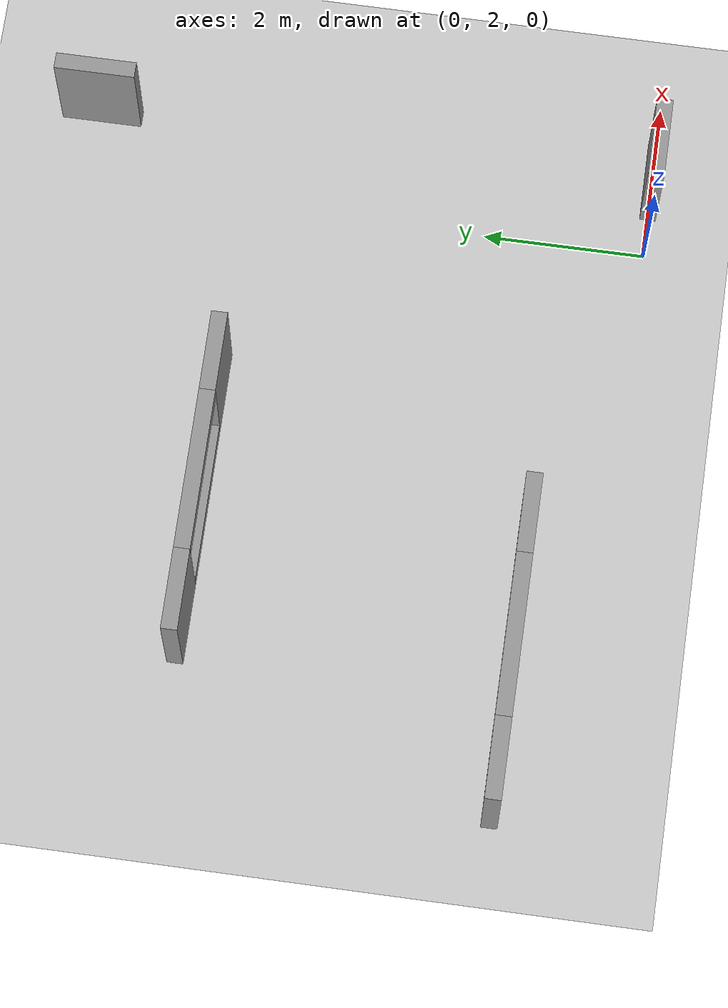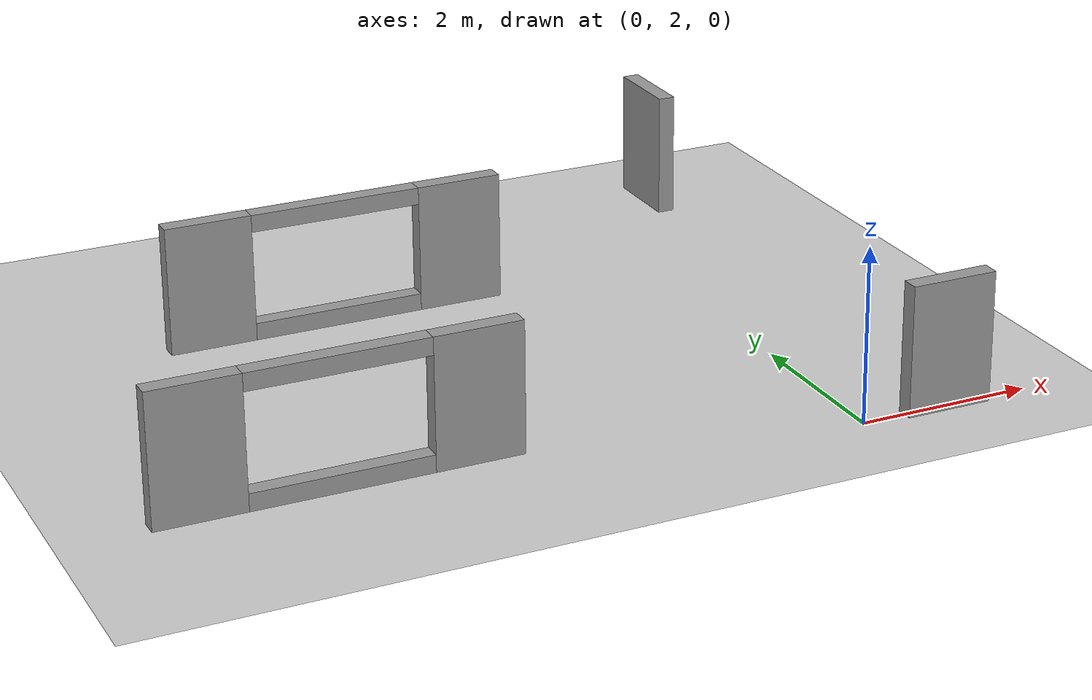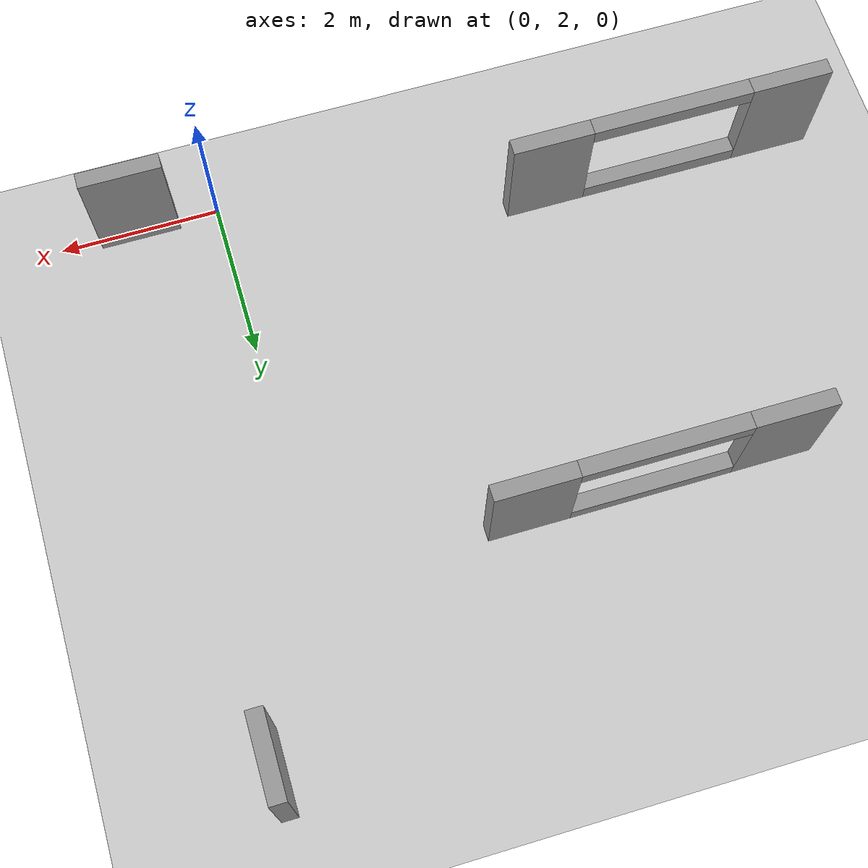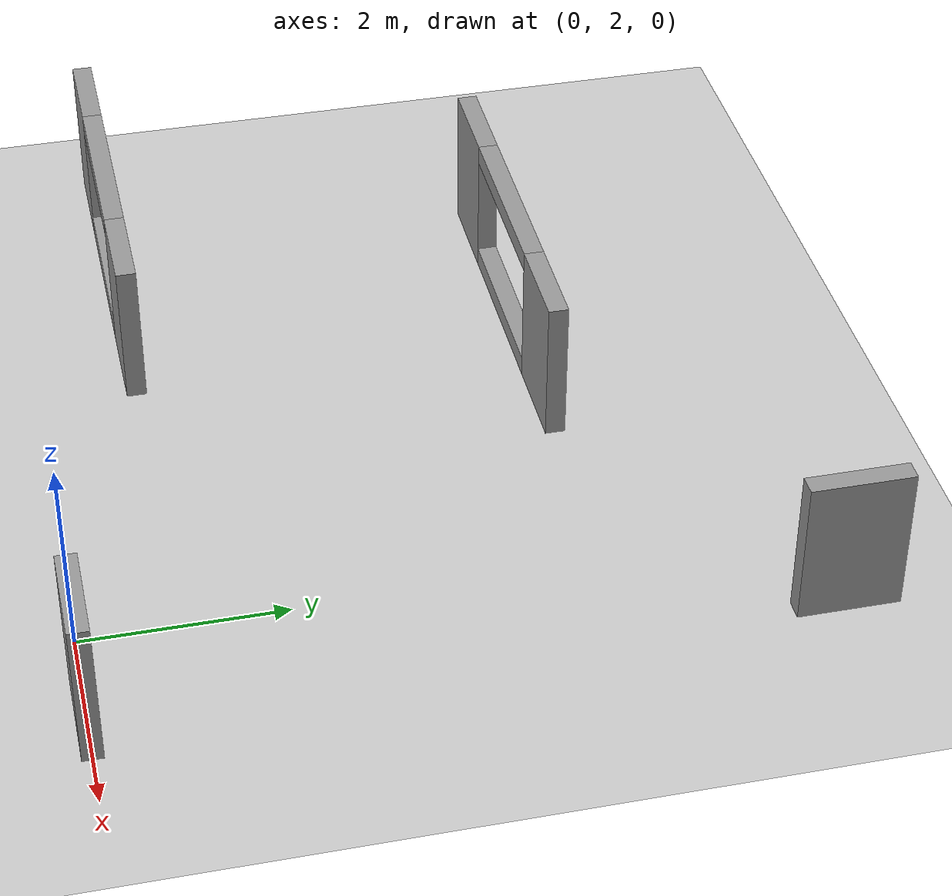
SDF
<sdf version="1.6">
 <world name="default">
  <model name="ground_plane">
   <static>1</static>
   <link name="link">
    <collision name="collision">
     <geometry><plane><normal>0 0 1</normal><size>100 100</size></plane></geometry>
     <surface><friction><ode><mu>100</mu><mu2>50</mu2></ode></friction></surface>
    </collision>
    <visual name="visual">
     <cast_shadows>0</cast_shadows>
     <geometry><plane><normal>0 0 1</normal><size>100 100</size></plane></geometry>
     <material>
      <script><uri>file://media/materials/scripts/gazebo.material</uri><name>Gazebo/Grey</name></script>
     </material>
    </visual>
   </link>
  </model>
  <model name="wall1_1">
   <link name="link">
    <inertial>
     <mass>1</mass>
     <inertia><ixx>1</ixx><ixy>0</ixy><ixz>0</ixz><iyy>1</iyy><iyz>0</iyz><izz>1</izz></inertia>
    </inertial>
    <visual name="visual">
     <cast_shadows>0</cast_shadows>
     <geometry><box><size>1 0.2 1.5</size></box></geometry>
     <material>
      <script>
       <uri>model://grey_wall/materials/scripts</uri>
       <uri>model://grey_wall/materials/textures</uri>
       <name>vrc/grey_wall</name>
      </script>
      <ambient>1 1 1 1</ambient>
      <diffuse>1 1 1 1</diffuse>
      <specular>0 0 0 1</specular>
      <emissive>0 0 0 1</emissive>
      <shader type="vertex"><normal_map>__default__</normal_map></shader>
     </material>
    </visual>
    <collision name="collision">
     <geometry><box><size>1.0 0.2 1.5</size></box></geometry>
     <surface>
      <friction>
       <ode><mu>1</mu><mu2>1</mu2><fdir1>0 0 0</fdir1><slip1>0</slip1><slip2>0</slip2></ode>
       <torsional>
        <coefficient>1</coefficient>
        <patch_radius>0</patch_radius>
        <surface_radius>0</surface_radius>
        <use_patch_radius>1</use_patch_radius>
        <ode><slip>0</slip></ode>
       </torsional>
      </friction>
      <bounce><restitution_coefficient>0</restitution_coefficient><threshold>1e+06</threshold></bounce>
      <contact>
       <collide_without_contact>0</collide_without_contact>
       <collide_without_contact_bitmask>1</collide_without_contact_bitmask>
       <collide_bitmask>1</collide_bitmask>
       <ode>
        <soft_cfm>0</soft_cfm>
        <soft_erp>0.2</soft_erp>
        <kp>1e+13</kp>
        <kd>1</kd>
        <max_vel>0.01</max_vel>
        <min_depth>0</min_depth>
       </ode>
       <bullet>
        <split_impulse>1</split_impulse>
        <split_impulse_penetration_threshold>-0.01</split_impulse_penetration_threshold>
        <soft_cfm>0</soft_cfm>
        <soft_erp>0.2</soft_erp>
        <kp>1e+13</kp>
        <kd>1</kd>
       </bullet>
      </contact>
     </surface>
    </collision>
   </link>
   <static>1</static>
   <pose>1.0 2.0 0.75 0 -0 0</pose>
  </model>
  <model name="wall3_1">
   <link name="link">
    <inertial>
     <mass>1</mass>
     <inertia><ixx>1</ixx><ixy>0</ixy><ixz>0</ixz><iyy>1</iyy><iyz>0</iyz><izz>1</izz></inertia>
    </inertial>
    <visual name="visual">
     <cast_shadows>0</cast_shadows>
     <geometry><box><size>1 0.2 1.5</size></box></geometry>
     <material>
      <script>
       <uri>model://grey_wall/materials/scripts</uri>
       <uri>model://grey_wall/materials/textures</uri>
       <name>vrc/grey_wall</name>
      </script>
      <ambient>1 1 1 1</ambient>
      <diffuse>1 1 1 1</diffuse>
      <specular>0 0 0 1</specular>
      <emissive>0 0 0 1</emissive>
      <shader type="vertex"><normal_map>__default__</normal_map></shader>
     </material>
    </visual>
    <collision name="collision">
     <geometry><box><size>1.0 0.2 1.5</size></box></geometry>
     <surface>
      <friction>
       <ode><mu>1</mu><mu2>1</mu2><fdir1>0 0 0</fdir1><slip1>0</slip1><slip2>0</slip2></ode>
       <torsional>
        <coefficient>1</coefficient>
        <patch_radius>0</patch_radius>
        <surface_radius>0</surface_radius>
        <use_patch_radius>1</use_patch_radius>
        <ode><slip>0</slip></ode>
       </torsional>
      </friction>
      <bounce><restitution_coefficient>0</restitution_coefficient><threshold>1e+06</threshold></bounce>
      <contact>
       <collide_without_contact>0</collide_without_contact>
       <collide_without_contact_bitmask>1</collide_without_contact_bitmask>
       <collide_bitmask>1</collide_bitmask>
       <ode>
        <soft_cfm>0</soft_cfm>
        <soft_erp>0.2</soft_erp>
        <kp>1e+13</kp>
        <kd>1</kd>
        <max_vel>0.01</max_vel>
        <min_depth>0</min_depth>
       </ode>
       <bullet>
        <split_impulse>1</split_impulse>
        <split_impulse_penetration_threshold>-0.01</split_impulse_penetration_threshold>
        <soft_cfm>0</soft_cfm>
        <soft_erp>0.2</soft_erp>
        <kp>1e+13</kp>
        <kd>1</kd>
       </bullet>
      </contact>
     </surface>
    </collision>
   </link>
   <static>1</static>
   <pose>-7.0 3.0 0.75 0 -0 0</pose>
  </model>
  <model name="wall3_3">
   <link name="link">
    <inertial>
     <mass>1</mass>
     <inertia><ixx>1</ixx><ixy>0</ixy><ixz>0</ixz><iyy>1</iyy><iyz>0</iyz><izz>1</izz></inertia>
    </inertial>
    <visual name="visual">
     <cast_shadows>0</cast_shadows>
     <geometry><box><size>2.0 0.2 0.2</size></box></geometry>
     <material>
      <script>
       <uri>model://grey_wall/materials/scripts</uri>
       <uri>model://grey_wall/materials/textures</uri>
       <name>vrc/grey_wall</name>
      </script>
      <ambient>1 1 1 1</ambient>
      <diffuse>1 1 1 1</diffuse>
      <specular>0 0 0 1</specular>
      <emissive>0 0 0 1</emissive>
      <shader type="vertex"><normal_map>__default__</normal_map></shader>
     </material>
    </visual>
    <collision name="collision">
     <geometry><box><size>2.0 0.2 0.2</size></box></geometry>
     <surface>
      <friction>
       <ode><mu>1</mu><mu2>1</mu2><fdir1>0 0 0</fdir1><slip1>0</slip1><slip2>0</slip2></ode>
       <torsional>
        <coefficient>1</coefficient>
        <patch_radius>0</patch_radius>
        <surface_radius>0</surface_radius>
        <use_patch_radius>1</use_patch_radius>
        <ode><slip>0</slip></ode>
       </torsional>
      </friction>
      <bounce><restitution_coefficient>0</restitution_coefficient><threshold>1e+06</threshold></bounce>
      <contact>
       <collide_without_contact>0</collide_without_contact>
       <collide_without_contact_bitmask>1</collide_without_contact_bitmask>
       <collide_bitmask>1</collide_bitmask>
       <ode>
        <soft_cfm>0</soft_cfm>
        <soft_erp>0.2</soft_erp>
        <kp>1e+13</kp>
        <kd>1</kd>
        <max_vel>0.01</max_vel>
        <min_depth>0</min_depth>
       </ode>
       <bullet>
        <split_impulse>1</split_impulse>
        <split_impulse_penetration_threshold>-0.01</split_impulse_penetration_threshold>
        <soft_cfm>0</soft_cfm>
        <soft_erp>0.2</soft_erp>
        <kp>1e+13</kp>
        <kd>1</kd>
       </bullet>
      </contact>
     </surface>
    </collision>
   </link>
   <static>1</static>
   <pose>-5.5 3.0 0.1 0 -0 0</pose>
  </model>
  <model name="wall3_4">
   <link name="link">
    <inertial>
     <mass>1</mass>
     <inertia><ixx>1</ixx><ixy>0</ixy><ixz>0</ixz><iyy>1</iyy><iyz>0</iyz><izz>1</izz></inertia>
    </inertial>
    <visual name="visual">
     <cast_shadows>0</cast_shadows>
     <geometry><box><size>2.0 0.2 0.2</size></box></geometry>
     <material>
      <script>
       <uri>model://grey_wall/materials/scripts</uri>
       <uri>model://grey_wall/materials/textures</uri>
       <name>vrc/grey_wall</name>
      </script>
      <ambient>1 1 1 1</ambient>
      <diffuse>1 1 1 1</diffuse>
      <specular>0 0 0 1</specular>
      <emissive>0 0 0 1</emissive>
      <shader type="vertex"><normal_map>__default__</normal_map></shader>
     </material>
    </visual>
    <collision name="collision">
     <geometry><box><size>2.0 0.2 0.2</size></box></geometry>
     <surface>
      <friction>
       <ode><mu>1</mu><mu2>1</mu2><fdir1>0 0 0</fdir1><slip1>0</slip1><slip2>0</slip2></ode>
       <torsional>
        <coefficient>1</coefficient>
        <patch_radius>0</patch_radius>
        <surface_radius>0</surface_radius>
        <use_patch_radius>1</use_patch_radius>
        <ode><slip>0</slip></ode>
       </torsional>
      </friction>
      <bounce><restitution_coefficient>0</restitution_coefficient><threshold>1e+06</threshold></bounce>
      <contact>
       <collide_without_contact>0</collide_without_contact>
       <collide_without_contact_bitmask>1</collide_without_contact_bitmask>
       <collide_bitmask>1</collide_bitmask>
       <ode>
        <soft_cfm>0</soft_cfm>
        <soft_erp>0.2</soft_erp>
        <kp>1e+13</kp>
        <kd>1</kd>
        <max_vel>0.01</max_vel>
        <min_depth>0</min_depth>
       </ode>
       <bullet>
        <split_impulse>1</split_impulse>
        <split_impulse_penetration_threshold>-0.01</split_impulse_penetration_threshold>
        <soft_cfm>0</soft_cfm>
        <soft_erp>0.2</soft_erp>
        <kp>1e+13</kp>
        <kd>1</kd>
       </bullet>
      </contact>
     </surface>
    </collision>
   </link>
   <static>1</static>
   <pose>-5.5 3.0 1.4 0 -0 0</pose>
  </model>
  <model name="wall3_2">
   <link name="link">
    <inertial>
     <mass>1</mass>
     <inertia><ixx>1</ixx><ixy>0</ixy><ixz>0</ixz><iyy>1</iyy><iyz>0</iyz><izz>1</izz></inertia>
    </inertial>
    <visual name="visual">
     <cast_shadows>0</cast_shadows>
     <geometry><box><size>1 0.2 1.5</size></box></geometry>
     <material>
      <script>
       <uri>model://grey_wall/materials/scripts</uri>
       <uri>model://grey_wall/materials/textures</uri>
       <name>vrc/grey_wall</name>
      </script>
      <ambient>1 1 1 1</ambient>
      <diffuse>1 1 1 1</diffuse>
      <specular>0 0 0 1</specular>
      <emissive>0 0 0 1</emissive>
      <shader type="vertex"><normal_map>__default__</normal_map></shader>
     </material>
    </visual>
    <collision name="collision">
     <geometry><box><size>1.0 0.2 1.5</size></box></geometry>
     <surface>
      <friction>
       <ode><mu>1</mu><mu2>1</mu2><fdir1>0 0 0</fdir1><slip1>0</slip1><slip2>0</slip2></ode>
       <torsional>
        <coefficient>1</coefficient>
        <patch_radius>0</patch_radius>
        <surface_radius>0</surface_radius>
        <use_patch_radius>1</use_patch_radius>
        <ode><slip>0</slip></ode>
       </torsional>
      </friction>
      <bounce><restitution_coefficient>0</restitution_coefficient><threshold>1e+06</threshold></bounce>
      <contact>
       <collide_without_contact>0</collide_without_contact>
       <collide_without_contact_bitmask>1</collide_without_contact_bitmask>
       <collide_bitmask>1</collide_bitmask>
       <ode>
        <soft_cfm>0</soft_cfm>
        <soft_erp>0.2</soft_erp>
        <kp>1e+13</kp>
        <kd>1</kd>
        <max_vel>0.01</max_vel>
        <min_depth>0</min_depth>
       </ode>
       <bullet>
        <split_impulse>1</split_impulse>
        <split_impulse_penetration_threshold>-0.01</split_impulse_penetration_threshold>
        <soft_cfm>0</soft_cfm>
        <soft_erp>0.2</soft_erp>
        <kp>1e+13</kp>
        <kd>1</kd>
       </bullet>
      </contact>
     </surface>
    </collision>
   </link>
   <static>1</static>
   <pose>-4.0 3.0 0.75 0 -0 0</pose>
  </model>
  <model name="wall4_1">
   <link name="link">
    <inertial>
     <mass>1</mass>
     <inertia><ixx>1</ixx><ixy>0</ixy><ixz>0</ixz><iyy>1</iyy><iyz>0</iyz><izz>1</izz></inertia>
    </inertial>
    <visual name="visual">
     <cast_shadows>0</cast_shadows>
     <geometry><box><size>1 0.2 1.5</size></box></geometry>
     <material>
      <script>
       <uri>model://grey_wall/materials/scripts</uri>
       <uri>model://grey_wall/materials/textures</uri>
       <name>vrc/grey_wall</name>
      </script>
      <ambient>1 1 1 1</ambient>
      <diffuse>1 1 1 1</diffuse>
      <specular>0 0 0 1</specular>
      <emissive>0 0 0 1</emissive>
      <shader type="vertex"><normal_map>__default__</normal_map></shader>
     </material>
    </visual>
    <collision name="collision">
     <geometry><box><size>1.0 0.2 1.5</size></box></geometry>
     <surface>
      <friction>
       <ode><mu>1</mu><mu2>1</mu2><fdir1>0 0 0</fdir1><slip1>0</slip1><slip2>0</slip2></ode>
       <torsional>
        <coefficient>1</coefficient>
        <patch_radius>0</patch_radius>
        <surface_radius>0</surface_radius>
        <use_patch_radius>1</use_patch_radius>
        <ode><slip>0</slip></ode>
       </torsional>
      </friction>
      <bounce><restitution_coefficient>0</restitution_coefficient><threshold>1e+06</threshold></bounce>
      <contact>
       <collide_without_contact>0</collide_without_contact>
       <collide_without_contact_bitmask>1</collide_without_contact_bitmask>
       <collide_bitmask>1</collide_bitmask>
       <ode>
        <soft_cfm>0</soft_cfm>
        <soft_erp>0.2</soft_erp>
        <kp>1e+13</kp>
        <kd>1</kd>
        <max_vel>0.01</max_vel>
        <min_depth>0</min_depth>
       </ode>
       <bullet>
        <split_impulse>1</split_impulse>
        <split_impulse_penetration_threshold>-0.01</split_impulse_penetration_threshold>
        <soft_cfm>0</soft_cfm>
        <soft_erp>0.2</soft_erp>
        <kp>1e+13</kp>
        <kd>1</kd>
       </bullet>
      </contact>
     </surface>
    </collision>
   </link>
   <static>1</static>
   <pose>-5.5 7.0 0.75 0 -0 0</pose>
  </model>
  <model name="wall4_3">
   <link name="link">
    <inertial>
     <mass>1</mass>
     <inertia><ixx>1</ixx><ixy>0</ixy><ixz>0</ixz><iyy>1</iyy><iyz>0</iyz><izz>1</izz></inertia>
    </inertial>
    <visual name="visual">
     <cast_shadows>0</cast_shadows>
     <geometry><box><size>2.0 0.2 0.2</size></box></geometry>
     <material>
      <script>
       <uri>model://grey_wall/materials/scripts</uri>
       <uri>model://grey_wall/materials/textures</uri>
       <name>vrc/grey_wall</name>
      </script>
      <ambient>1 1 1 1</ambient>
      <diffuse>1 1 1 1</diffuse>
      <specular>0 0 0 1</specular>
      <emissive>0 0 0 1</emissive>
      <shader type="vertex"><normal_map>__default__</normal_map></shader>
     </material>
    </visual>
    <collision name="collision">
     <geometry><box><size>2.0 0.2 0.2</size></box></geometry>
     <surface>
      <friction>
       <ode><mu>1</mu><mu2>1</mu2><fdir1>0 0 0</fdir1><slip1>0</slip1><slip2>0</slip2></ode>
       <torsional>
        <coefficient>1</coefficient>
        <patch_radius>0</patch_radius>
        <surface_radius>0</surface_radius>
        <use_patch_radius>1</use_patch_radius>
        <ode><slip>0</slip></ode>
       </torsional>
      </friction>
      <bounce><restitution_coefficient>0</restitution_coefficient><threshold>1e+06</threshold></bounce>
      <contact>
       <collide_without_contact>0</collide_without_contact>
       <collide_without_contact_bitmask>1</collide_without_contact_bitmask>
       <collide_bitmask>1</collide_bitmask>
       <ode>
        <soft_cfm>0</soft_cfm>
        <soft_erp>0.2</soft_erp>
        <kp>1e+13</kp>
        <kd>1</kd>
        <max_vel>0.01</max_vel>
        <min_depth>0</min_depth>
       </ode>
       <bullet>
        <split_impulse>1</split_impulse>
        <split_impulse_penetration_threshold>-0.01</split_impulse_penetration_threshold>
        <soft_cfm>0</soft_cfm>
        <soft_erp>0.2</soft_erp>
        <kp>1e+13</kp>
        <kd>1</kd>
       </bullet>
      </contact>
     </surface>
    </collision>
   </link>
   <static>1</static>
   <pose>-4.0 7.0 0.1 0 -0 0</pose>
  </model>
  <model name="wall4_4">
   <link name="link">
    <inertial>
     <mass>1</mass>
     <inertia><ixx>1</ixx><ixy>0</ixy><ixz>0</ixz><iyy>1</iyy><iyz>0</iyz><izz>1</izz></inertia>
    </inertial>
    <visual name="visual">
     <cast_shadows>0</cast_shadows>
     <geometry><box><size>2.0 0.2 0.2</size></box></geometry>
     <material>
      <script>
       <uri>model://grey_wall/materials/scripts</uri>
       <uri>model://grey_wall/materials/textures</uri>
       <name>vrc/grey_wall</name>
      </script>
      <ambient>1 1 1 1</ambient>
      <diffuse>1 1 1 1</diffuse>
      <specular>0 0 0 1</specular>
      <emissive>0 0 0 1</emissive>
      <shader type="vertex"><normal_map>__default__</normal_map></shader>
     </material>
    </visual>
    <collision name="collision">
     <geometry><box><size>2.0 0.2 0.2</size></box></geometry>
     <surface>
      <friction>
       <ode><mu>1</mu><mu2>1</mu2><fdir1>0 0 0</fdir1><slip1>0</slip1><slip2>0</slip2></ode>
       <torsional>
        <coefficient>1</coefficient>
        <patch_radius>0</patch_radius>
        <surface_radius>0</surface_radius>
        <use_patch_radius>1</use_patch_radius>
        <ode><slip>0</slip></ode>
       </torsional>
      </friction>
      <bounce><restitution_coefficient>0</restitution_coefficient><threshold>1e+06</threshold></bounce>
      <contact>
       <collide_without_contact>0</collide_without_contact>
       <collide_without_contact_bitmask>1</collide_without_contact_bitmask>
       <collide_bitmask>1</collide_bitmask>
       <ode>
        <soft_cfm>0</soft_cfm>
        <soft_erp>0.2</soft_erp>
        <kp>1e+13</kp>
        <kd>1</kd>
        <max_vel>0.01</max_vel>
        <min_depth>0</min_depth>
       </ode>
       <bullet>
        <split_impulse>1</split_impulse>
        <split_impulse_penetration_threshold>-0.01</split_impulse_penetration_threshold>
        <soft_cfm>0</soft_cfm>
        <soft_erp>0.2</soft_erp>
        <kp>1e+13</kp>
        <kd>1</kd>
       </bullet>
      </contact>
     </surface>
    </collision>
   </link>
   <static>1</static>
   <pose>-4.0 7.0 1.4 0 -0 0</pose>
  </model>
  <model name="wall4_2">
   <link name="link">
    <inertial>
     <mass>1</mass>
     <inertia><ixx>1</ixx><ixy>0</ixy><ixz>0</ixz><iyy>1</iyy><iyz>0</iyz><izz>1</izz></inertia>
    </inertial>
    <visual name="visual">
     <cast_shadows>0</cast_shadows>
     <geometry><box><size>1 0.2 1.5</size></box></geometry>
     <material>
      <script>
       <uri>model://grey_wall/materials/scripts</uri>
       <uri>model://grey_wall/materials/textures</uri>
       <name>vrc/grey_wall</name>
      </script>
      <ambient>1 1 1 1</ambient>
      <diffuse>1 1 1 1</diffuse>
      <specular>0 0 0 1</specular>
      <emissive>0 0 0 1</emissive>
      <shader type="vertex"><normal_map>__default__</normal_map></shader>
     </material>
    </visual>
    <collision name="collision">
     <geometry><box><size>1.0 0.2 1.5</size></box></geometry>
     <surface>
      <friction>
       <ode><mu>1</mu><mu2>1</mu2><fdir1>0 0 0</fdir1><slip1>0</slip1><slip2>0</slip2></ode>
       <torsional>
        <coefficient>1</coefficient>
        <patch_radius>0</patch_radius>
        <surface_radius>0</surface_radius>
        <use_patch_radius>1</use_patch_radius>
        <ode><slip>0</slip></ode>
       </torsional>
      </friction>
      <bounce><restitution_coefficient>0</restitution_coefficient><threshold>1e+06</threshold></bounce>
      <contact>
       <collide_without_contact>0</collide_without_contact>
       <collide_without_contact_bitmask>1</collide_without_contact_bitmask>
       <collide_bitmask>1</collide_bitmask>
       <ode>
        <soft_cfm>0</soft_cfm>
        <soft_erp>0.2</soft_erp>
        <kp>1e+13</kp>
        <kd>1</kd>
        <max_vel>0.01</max_vel>
        <min_depth>0</min_depth>
       </ode>
       <bullet>
        <split_impulse>1</split_impulse>
        <split_impulse_penetration_threshold>-0.01</split_impulse_penetration_threshold>
        <soft_cfm>0</soft_cfm>
        <soft_erp>0.2</soft_erp>
        <kp>1e+13</kp>
        <kd>1</kd>
       </bullet>
      </contact>
     </surface>
    </collision>
   </link>
   <static>1</static>
   <pose>-2.5 7 0.75 0 -0 0</pose>
  </model>
  <model name="wall5_1">
   <link name="link">
    <inertial>
     <mass>1</mass>
     <inertia><ixx>1</ixx><ixy>0</ixy><ixz>0</ixz><iyy>1</iyy><iyz>0</iyz><izz>1</izz></inertia>
    </inertial>
    <visual name="visual">
     <cast_shadows>0</cast_shadows>
     <geometry><box><size>0.2 1.0 1.5</size></box></geometry>
     <material>
      <script>
       <uri>model://grey_wall/materials/scripts</uri>
       <uri>model://grey_wall/materials/textures</uri>
       <name>vrc/grey_wall</name>
      </script>
      <ambient>1 1 1 1</ambient>
      <diffuse>1 1 1 1</diffuse>
      <specular>0 0 0 1</specular>
      <emissive>0 0 0 1</emissive>
      <shader type="vertex"><normal_map>__default__</normal_map></shader>
     </material>
    </visual>
    <collision name="collision">
     <geometry><box><size>0.2 1.0 1.5</size></box></geometry>
     <surface>
      <friction>
       <ode><mu>1</mu><mu2>1</mu2><fdir1>0 0 0</fdir1><slip1>0</slip1><slip2>0</slip2></ode>
       <torsional>
        <coefficient>1</coefficient>
        <patch_radius>0</patch_radius>
        <surface_radius>0</surface_radius>
        <use_patch_radius>1</use_patch_radius>
        <ode><slip>0</slip></ode>
       </torsional>
      </friction>
      <bounce><restitution_coefficient>0</restitution_coefficient><threshold>1e+06</threshold></bounce>
      <contact>
       <collide_without_contact>0</collide_without_contact>
       <collide_without_contact_bitmask>1</collide_without_contact_bitmask>
       <collide_bitmask>1</collide_bitmask>
       <ode>
        <soft_cfm>0</soft_cfm>
        <soft_erp>0.2</soft_erp>
        <kp>1e+13</kp>
        <kd>1</kd>
        <max_vel>0.01</max_vel>
        <min_depth>0</min_depth>
       </ode>
       <bullet>
        <split_impulse>1</split_impulse>
        <split_impulse_penetration_threshold>-0.01</split_impulse_penetration_threshold>
        <soft_cfm>0</soft_cfm>
        <soft_erp>0.2</soft_erp>
        <kp>1e+13</kp>
        <kd>1</kd>
       </bullet>
      </contact>
     </surface>
    </collision>
   </link>
   <static>1</static>
   <pose>1.0 9.0 0.75 0 -0 0</pose>
  </model>
 </world>
</sdf>
